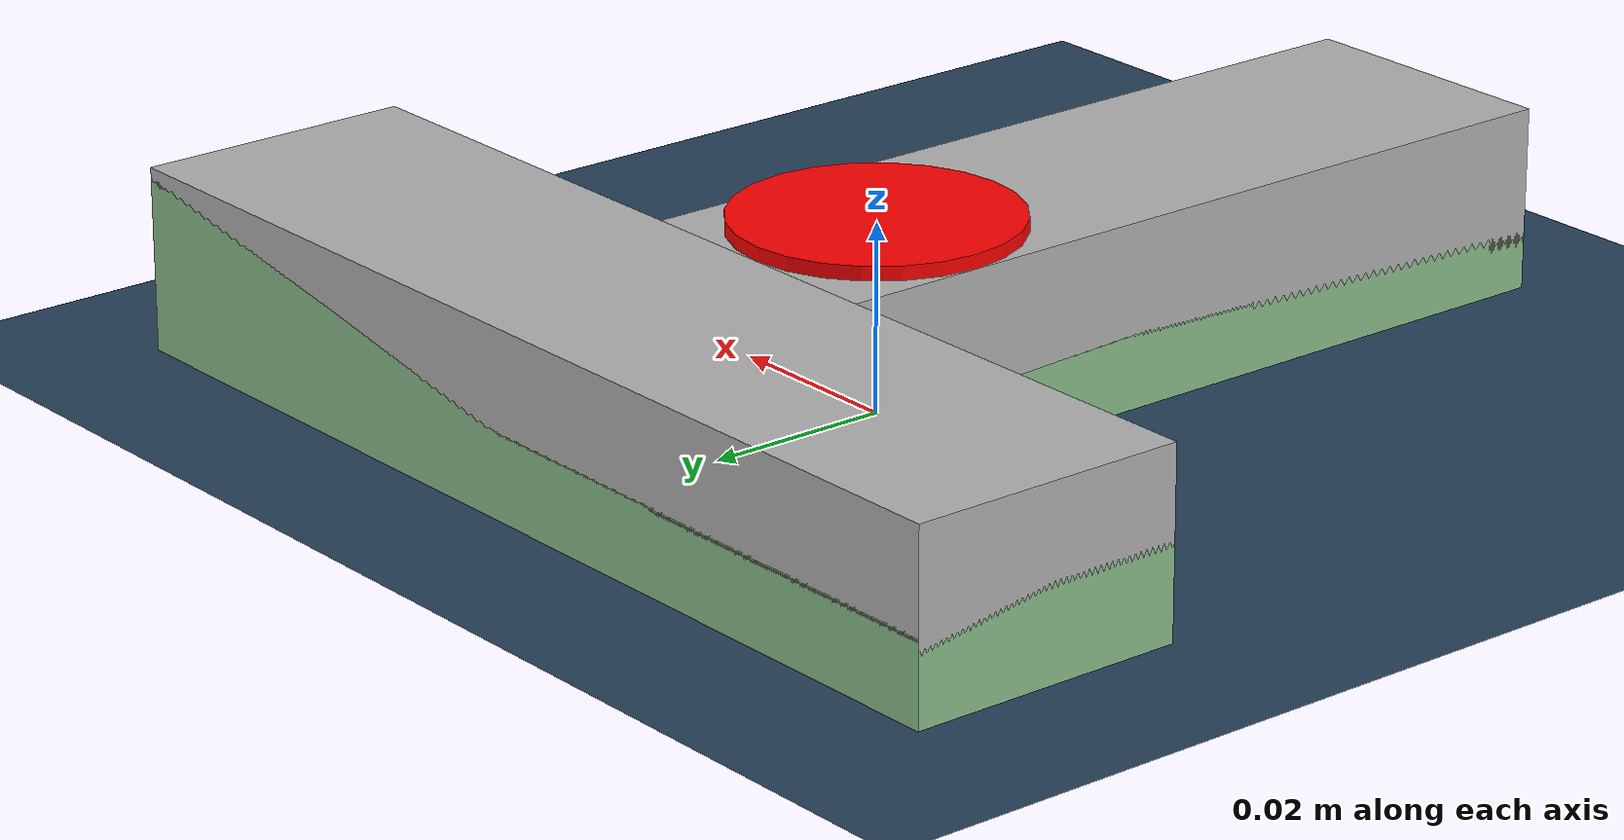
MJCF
<mujoco>
    <option timestep="0.01" integrator="implicitfast"/>
    <statistic center="0 0 0" extent="0.9"/>
    <default>
        <default class="slider">
            <position kp="2" ctrlrange="-10 10" forcerange="-1000 1000"/>
        </default>
        <default class="goal">
            <geom conaffinity="0" contype="0" rgba="0 1 0 0.2"/>
        </default>
    </default>
    <visual>
        <headlight ambient="0.4 0.4 0.4" diffuse="0.8 0.8 0.8" specular="0.1 0.1 0.1"/>
        <map znear="0.01"/>
    </visual>
  <asset>
    <texture type="skybox" builtin="gradient" rgb1="0.3 0.5 0.7" rgb2="0 0 0" width="512" height="3072"/>
    <texture type="2d" name="groundplane" builtin="checker" mark="edge" rgb1="0.2 0.3 0.4" rgb2="0.1 0.2 0.3"
      markrgb="0.8 0.8 0.8" width="300" height="300"/>
    <material name="groundplane" texture="groundplane" texuniform="true" texrepeat="5 5" reflectance="0.2"/>
  </asset>
    <worldbody>
        <geom name="ground" type="plane" material="groundplane" size="10 10 0.1" friction="0.25 0.0005 0.0001"/>
        <!-- friction="1. 0.0005 0.0001" -->
        <body name="pusher" pos="0. 0. 0.011">
            <joint name="slider_x" damping="10" type="slide" axis="1 0 0" />
            <joint name="slider_y" damping="10" type="slide" axis="0 1 0" />
            <geom name="pusher" type="cylinder" size="0.015 0.01" mass="1" rgba="1 0 0 1" friction="0.5 0.0005 0.0001"/>
            <site pos="0 0 0" name="trace_pusher"/>
        </body>
        <body name="block" pos="0.0 0.0 0.0095">
            <joint name="T_x" type="slide" axis="1 0 0"/>
            <joint name="T_y" type="slide" axis="0 1 0"/>
            <joint name="T_z" type="slide" axis="0 0 1"/>
            <joint name="T_rot" type="hinge" damping="0.0" axis="0 0 1"/>
            <geom name="bottom" type="box" pos="0 -0.03 0" size=".015 0.045 0.01" rgba="0.7 0.7 0.7 0.9" mass="0.1"/>
            <geom name="top" type="box" pos="0.0 0.03 0.0" size=".06 0.015 0.01" rgba="0.7 0.7 0.7 0.9" mass="0.1"/>
            <site pos="0 0 0" name="trace_block"/>
        </body>
        <body name="goal" mocap="true" pos="0.0 0.0 0.009">
          <geom class="goal" name="goal_bottom" type="box" pos="0 -0.03 0" size=".015 0.045 0.01"/>
          <geom class="goal" name="goal_top" type="box" pos="0.0 0.03 0.0" size=".06 0.015 0.01"/>
        </body>
    </worldbody>
    <actuator>
        <position name="actuator_pusher_x" joint="slider_x" class="slider" />
        <position name="actuator_pusher_y" joint="slider_y" class="slider" />
    </actuator>
    <sensor>
        <framepos name="trace_pusher" objtype="site" objname="trace_pusher"/>
        <framepos name="trace_block" objtype="site" objname="trace_block"/>
    </sensor>
</mujoco>
